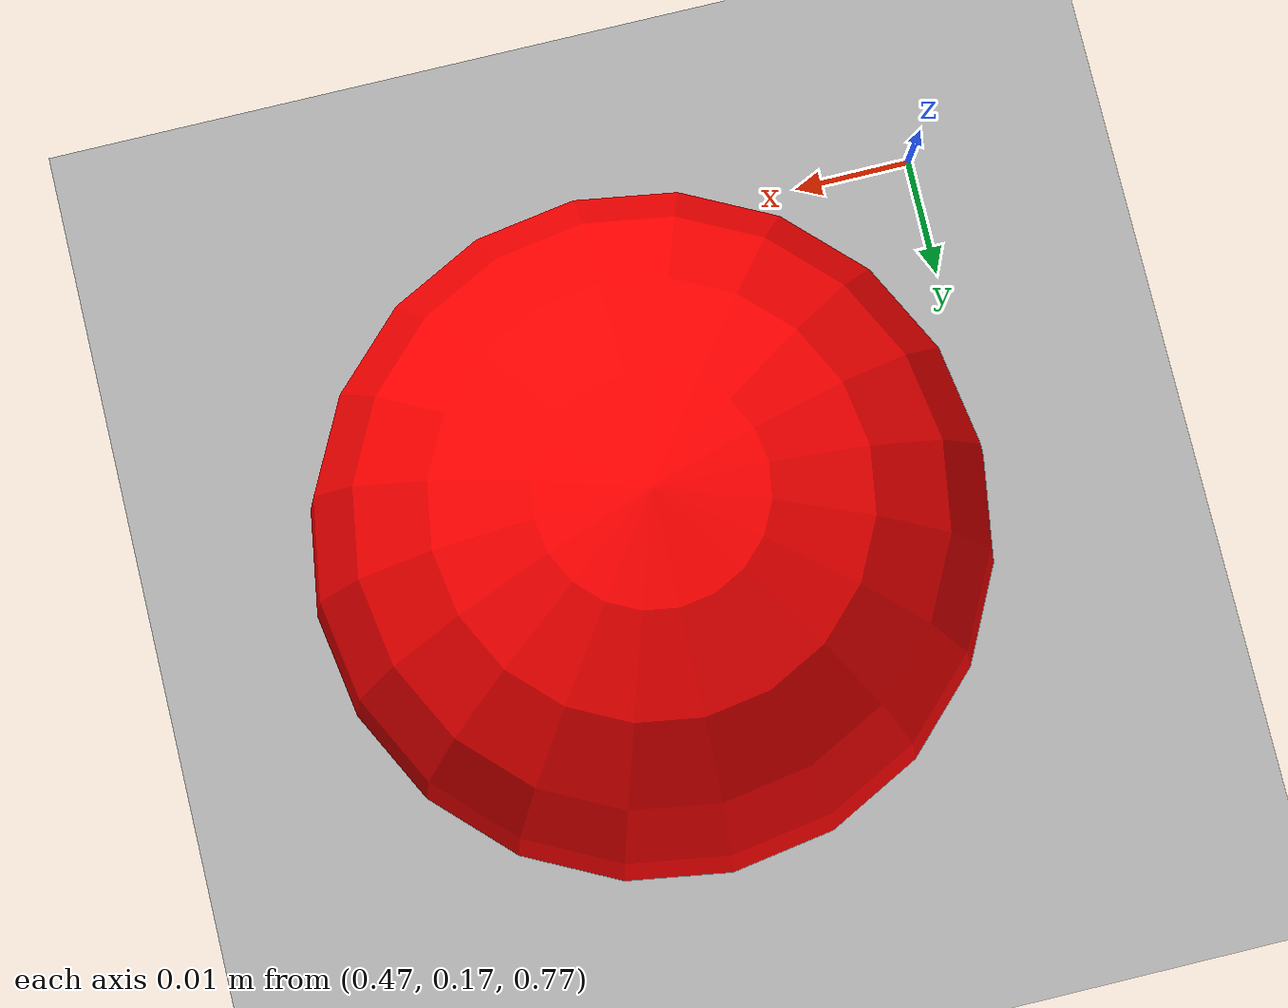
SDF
<?xml version="1.0"?>
<sdf version="1.7">
  <world name="table_ball_world">

    <physics name="default_physics" default="true" type="ode">
      <max_step_size>0.001</max_step_size>
      <real_time_factor>1.0</real_time_factor>
    </physics>
    <gravity>0 0 -9.8</gravity>

    <include>
      <uri>model://sun</uri>
    </include>

    <include>
      <uri>model://ground_plane</uri>
    </include>

    <model name="work_table">
      <static>true</static>
      <pose>0 0 0.75 0 0 0</pose>
      <link name="table_link">
        <visual name="visual">
          <geometry>
            <box><size>2.0 2.0 0.05</size></box>
          </geometry>
          <material>
            <ambient>0.7 0.7 0.7 1</ambient>
            <diffuse>0.7 0.7 0.7 1</diffuse>
            <specular>0.1 0.1 0.1 1</specular>
          </material>
        </visual>
        <collision name="collision">
          <geometry>
            <box><size>2.0 2.0 0.05</size></box>
          </geometry>
        </collision>
      </link>
    </model>

    <model name="target_ball">
      <pose>0.5 0.2 0.8 0 0 0</pose>
      <link name="ball_link">
        <visual name="visual">
          <geometry>
            <sphere><radius>0.025</radius></sphere>
          </geometry>
          <material>
            <ambient>1.0 0.0 0.0 1</ambient>
            <diffuse>1.0 0.0 0.0 1</diffuse>
          </material>
        </visual>
        <collision name="collision">
          <geometry>
            <sphere><radius>0.025</radius></sphere>
          </geometry>
        </collision>
        <inertial>
          <mass>0.1</mass>
          <inertia>
            <ixx>0.00001</ixx> <ixy>0</ixy> <ixz>0</ixz>
            <iyy>0.00001</iyy> <iyz>0</iyz> <izz>0.00001</izz>
          </inertia>
        </inertial>
      </link>
    </model>

    <!-- ✅ 关键插件: 初始化 ROS 2 与 Gazebo 的通信 -->
    <plugin name="gazebo_ros_state" filename="libgazebo_ros_state.so"/>
  </world>
</sdf>
